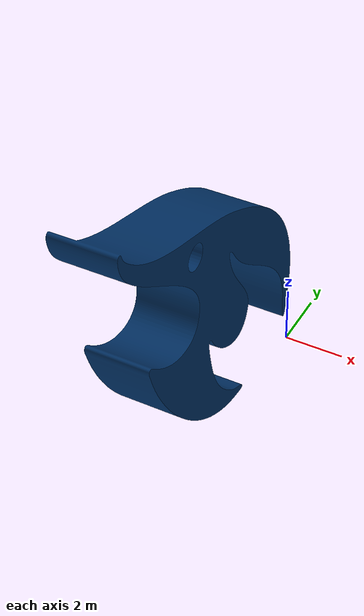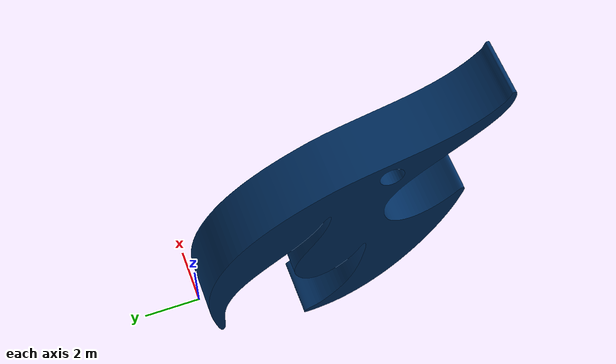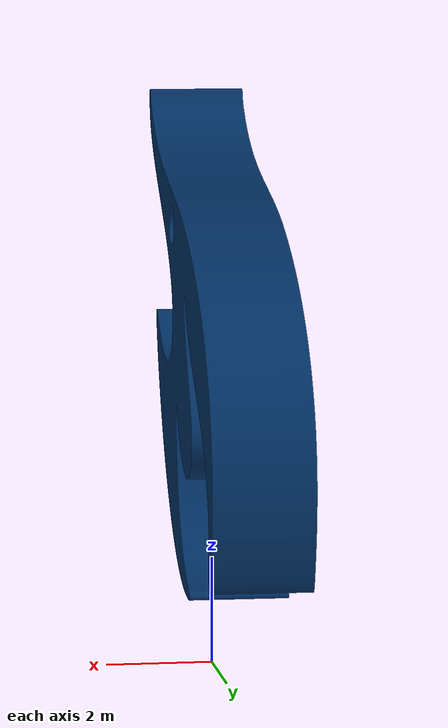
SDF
<sdf version="1.6">
  <model name="TU_Delft_logo">
    <static>true</static>
    <link name="link">
      <visual name="visual">
        <geometry>
          <mesh>
            <uri>model://TU_Delft_logo/TU_Delft_logo.dae</uri>
          </mesh>
        </geometry>
        <!-- Option 1: Simple PBR material (recommended) -->
        <material>
          <ambient>0.0 0.18 0.38 1</ambient>  <!-- TU Delft blue (RGB: 0,46,98) -->
          <diffuse>0.0 0.18 0.38 1</diffuse>
          <specular>0.05 0.05 0.05 1</specular>  <!-- Matte finish -->
          <emissive>0 0 0 1</emissive>  <!-- Non-glowing -->
        </material>
      </visual>
    </link>
  </model>
</sdf>
